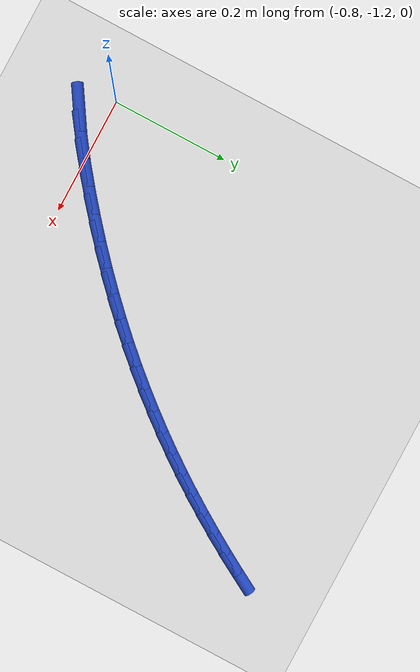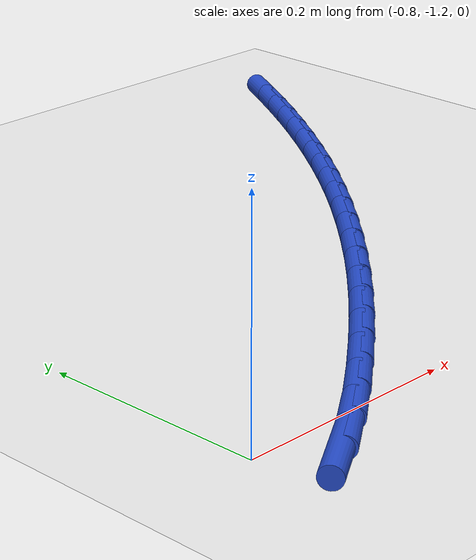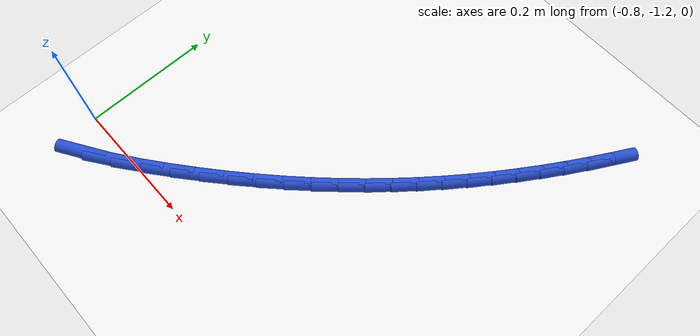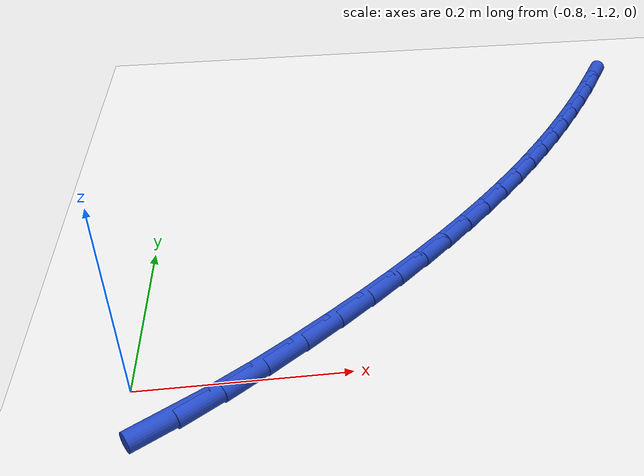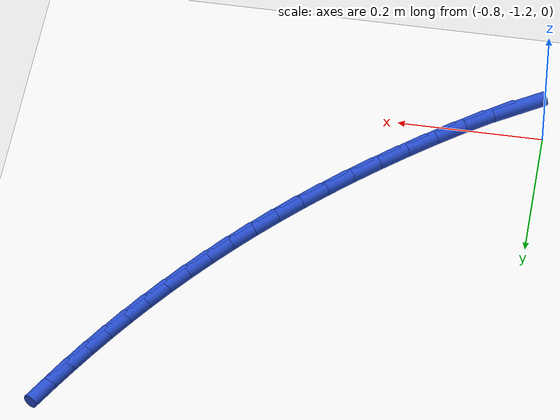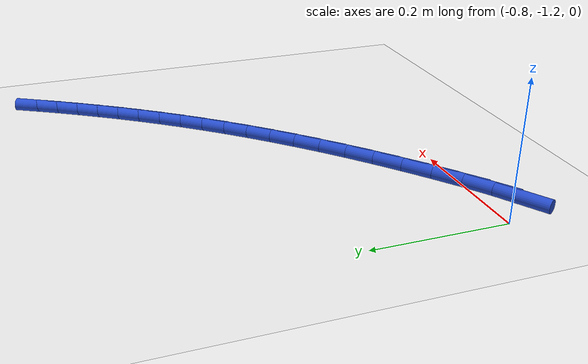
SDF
<sdf version="1.6">
 <world name="default">
  <model name="ground_plane">
   <static>1</static>
   <link name="link">
    <collision name="collision">
     <geometry><plane><normal>0 0 1</normal><size>100 100</size></plane></geometry>
     <surface><friction><ode><mu>100</mu><mu2>50</mu2></ode></friction></surface>
    </collision>
    <visual name="visual">
     <cast_shadows>0</cast_shadows>
     <geometry><plane><normal>0 0 1</normal><size>100 100</size></plane></geometry>
     <material>
      <script><uri>file://media/materials/scripts/gazebo.material</uri><name>Gazebo/WhiteGlow</name></script>
     </material>
    </visual>
   </link>
  </model>
  <model name="line">
   <link name="link_211">
    <pose>-0.7608979965279632 -1.2465274783229432 0.01 0 1.57 0.5653334712484798</pose>
    <collision name="collision">
     <geometry><cylinder><radius>0.01</radius><length>0.08</length></cylinder></geometry>
    </collision>
    <visual name="visual">
     <material>
      <script><name>Gazebo/Blue</name><uri>file://media/materials/scripts/gazebo.material</uri></script>
     </material>
     <geometry><cylinder><radius>0.01</radius><length>0.08</length></cylinder></geometry>
    </visual>
   </link>
   <link name="link_212">
    <pose>-0.7236617967190448 -1.222904668973375 0.01 0 1.57 0.6215414991816863</pose>
    <collision name="collision">
     <geometry><cylinder><radius>0.01</radius><length>0.08</length></cylinder></geometry>
    </collision>
    <visual name="visual">
     <material>
      <script><name>Gazebo/Blue</name><uri>file://media/materials/scripts/gazebo.material</uri></script>
     </material>
     <geometry><cylinder><radius>0.01</radius><length>0.08</length></cylinder></geometry>
    </visual>
   </link>
   <link name="link_213">
    <pose>-0.6866289101353781 -1.1963802816390192 0.01 0 1.57 0.6593800422172573</pose>
    <collision name="collision">
     <geometry><cylinder><radius>0.01</radius><length>0.08</length></cylinder></geometry>
    </collision>
    <visual name="visual">
     <material>
      <script><name>Gazebo/Blue</name><uri>file://media/materials/scripts/gazebo.material</uri></script>
     </material>
     <geometry><cylinder><radius>0.01</radius><length>0.08</length></cylinder></geometry>
    </visual>
   </link>
   <link name="link_214">
    <pose>-0.6504428605860939 -1.1683320401104513 0.01 0 1.57 0.6841336338602232</pose>
    <collision name="collision">
     <geometry><cylinder><radius>0.01</radius><length>0.08</length></cylinder></geometry>
    </collision>
    <visual name="visual">
     <material>
      <script><name>Gazebo/Blue</name><uri>file://media/materials/scripts/gazebo.material</uri></script>
     </material>
     <geometry><cylinder><radius>0.01</radius><length>0.08</length></cylinder></geometry>
    </visual>
   </link>
   <link name="link_215">
    <pose>-0.6156607856276066 -1.1399665241273602 0.01 0 1.57 0.7062858077648122</pose>
    <collision name="collision">
     <geometry><cylinder><radius>0.01</radius><length>0.08</length></cylinder></geometry>
    </collision>
    <visual name="visual">
     <material>
      <script><name>Gazebo/Blue</name><uri>file://media/materials/scripts/gazebo.material</uri></script>
     </material>
     <geometry><cylinder><radius>0.01</radius><length>0.08</length></cylinder></geometry>
    </visual>
   </link>
   <link name="link_216">
    <pose>-0.5823761437723975 -1.1115716960870565 0.01 0 1.57 0.728972984312592</pose>
    <collision name="collision">
     <geometry><cylinder><radius>0.01</radius><length>0.08</length></cylinder></geometry>
    </collision>
    <visual name="visual">
     <material>
      <script><name>Gazebo/Blue</name><uri>file://media/materials/scripts/gazebo.material</uri></script>
     </material>
     <geometry><cylinder><radius>0.01</radius><length>0.08</length></cylinder></geometry>
    </visual>
   </link>
   <link name="link_217">
    <pose>-0.5505274873428379 -1.0831286261204438 0.01 0 1.57 0.752117575176383</pose>
    <collision name="collision">
     <geometry><cylinder><radius>0.01</radius><length>0.08</length></cylinder></geometry>
    </collision>
    <visual name="visual">
     <material>
      <script><name>Gazebo/Blue</name><uri>file://media/materials/scripts/gazebo.material</uri></script>
     </material>
     <geometry><cylinder><radius>0.01</radius><length>0.08</length></cylinder></geometry>
    </visual>
   </link>
   <link name="link_218">
    <pose>-0.5200532597791895 -1.0546181686467293 0.01 0 1.57 0.7756273375892793</pose>
    <collision name="collision">
     <geometry><cylinder><radius>0.01</radius><length>0.08</length></cylinder></geometry>
    </collision>
    <visual name="visual">
     <material>
      <script><name>Gazebo/Blue</name><uri>file://media/materials/scripts/gazebo.material</uri></script>
     </material>
     <geometry><cylinder><radius>0.01</radius><length>0.08</length></cylinder></geometry>
    </visual>
   </link>
   <link name="link_219">
    <pose>-0.4908919045217148 -1.0260211780851198 0.01 0 1.57 0.7993981635928031</pose>
    <collision name="collision">
     <geometry><cylinder><radius>0.01</radius><length>0.08</length></cylinder></geometry>
    </collision>
    <visual name="visual">
     <material>
      <script><name>Gazebo/Blue</name><uri>file://media/materials/scripts/gazebo.material</uri></script>
     </material>
     <geometry><cylinder><radius>0.01</radius><length>0.08</length></cylinder></geometry>
    </visual>
   </link>
   <link name="link_220">
    <pose>-0.4629818650106762 -0.9973185088548232 0.01 0 1.57 0.8233151323422432</pose>
    <collision name="collision">
     <geometry><cylinder><radius>0.01</radius><length>0.08</length></cylinder></geometry>
    </collision>
    <visual name="visual">
     <material>
      <script><name>Gazebo/Blue</name><uri>file://media/materials/scripts/gazebo.material</uri></script>
     </material>
     <geometry><cylinder><radius>0.01</radius><length>0.08</length></cylinder></geometry>
    </visual>
   </link>
   <link name="link_221">
    <pose>-0.436261584686336 -0.9684910153750467 0.01 0 1.57 0.8472540188282398</pose>
    <collision name="collision">
     <geometry><cylinder><radius>0.01</radius><length>0.08</length></cylinder></geometry>
    </collision>
    <visual name="visual">
     <material>
      <script><name>Gazebo/Blue</name><uri>file://media/materials/scripts/gazebo.material</uri></script>
     </material>
     <geometry><cylinder><radius>0.01</radius><length>0.08</length></cylinder></geometry>
    </visual>
   </link>
   <link name="link_222">
    <pose>-0.4106695069889563 -0.9395195520649967 0.01 0 1.57 0.8710832298584397</pose>
    <collision name="collision">
     <geometry><cylinder><radius>0.01</radius><length>0.08</length></cylinder></geometry>
    </collision>
    <visual name="visual">
     <material>
      <script><name>Gazebo/Blue</name><uri>file://media/materials/scripts/gazebo.material</uri></script>
     </material>
     <geometry><cylinder><radius>0.01</radius><length>0.08</length></cylinder></geometry>
    </visual>
   </link>
   <link name="link_223">
    <pose>-0.3861440753587997 -0.9103849733438812 0.01 0 1.57 0.8946661058704426</pose>
    <collision name="collision">
     <geometry><cylinder><radius>0.01</radius><length>0.08</length></cylinder></geometry>
    </collision>
    <visual name="visual">
     <material>
      <script><name>Gazebo/Blue</name><uri>file://media/materials/scripts/gazebo.material</uri></script>
     </material>
     <geometry><cylinder><radius>0.01</radius><length>0.08</length></cylinder></geometry>
    </visual>
   </link>
   <link name="link_224">
    <pose>-0.3626237332361282 -0.8810681336309071 0.01 0 1.57 0.9178634973916515</pose>
    <collision name="collision">
     <geometry><cylinder><radius>0.01</radius><length>0.08</length></cylinder></geometry>
    </collision>
    <visual name="visual">
     <material>
      <script><name>Gazebo/Blue</name><uri>file://media/materials/scripts/gazebo.material</uri></script>
     </material>
     <geometry><cylinder><radius>0.01</radius><length>0.08</length></cylinder></geometry>
    </visual>
   </link>
   <link name="link_225">
    <pose>-0.34004692406120424 -0.8515498873452818 0.01 0 1.57 0.940536501490032</pose>
    <collision name="collision">
     <geometry><cylinder><radius>0.01</radius><length>0.08</length></cylinder></geometry>
    </collision>
    <visual name="visual">
     <material>
      <script><name>Gazebo/Blue</name><uri>file://media/materials/scripts/gazebo.material</uri></script>
     </material>
     <geometry><cylinder><radius>0.01</radius><length>0.08</length></cylinder></geometry>
    </visual>
   </link>
   <link name="link_226">
    <pose>-0.3183520912742901 -0.8218110889062124 0.01 0 1.57 0.9625492295401591</pose>
    <collision name="collision">
     <geometry><cylinder><radius>0.01</radius><length>0.08</length></cylinder></geometry>
    </collision>
    <visual name="visual">
     <material>
      <script><name>Gazebo/Blue</name><uri>file://media/materials/scripts/gazebo.material</uri></script>
     </material>
     <geometry><cylinder><radius>0.01</radius><length>0.08</length></cylinder></geometry>
    </visual>
   </link>
   <link name="link_227">
    <pose>-0.297477678315648 -0.791832592732906 0.01 0 1.57 0.983771475019678</pose>
    <collision name="collision">
     <geometry><cylinder><radius>0.01</radius><length>0.08</length></cylinder></geometry>
    </collision>
    <visual name="visual">
     <material>
      <script><name>Gazebo/Blue</name><uri>file://media/materials/scripts/gazebo.material</uri></script>
     </material>
     <geometry><cylinder><radius>0.01</radius><length>0.08</length></cylinder></geometry>
    </visual>
   </link>
   <link name="link_228">
    <pose>-0.2773621286255402 -0.7615952532445699 0.01 0 1.57 1.004081159200329</pose>
    <collision name="collision">
     <geometry><cylinder><radius>0.01</radius><length>0.08</length></cylinder></geometry>
    </collision>
    <visual name="visual">
     <material>
      <script><name>Gazebo/Blue</name><uri>file://media/materials/scripts/gazebo.material</uri></script>
     </material>
     <geometry><cylinder><radius>0.01</radius><length>0.08</length></cylinder></geometry>
    </visual>
   </link>
   <link name="link_229">
    <pose>-0.2579438856442291 -0.7310799248604114 0.01 0 1.57 1.0233664521740542</pose>
    <collision name="collision">
     <geometry><cylinder><radius>0.01</radius><length>0.08</length></cylinder></geometry>
    </collision>
    <visual name="visual">
     <material>
      <script><name>Gazebo/Blue</name><uri>file://media/materials/scripts/gazebo.material</uri></script>
     </material>
     <geometry><cylinder><radius>0.01</radius><length>0.08</length></cylinder></geometry>
    </visual>
   </link>
   <link name="link_230">
    <pose>-0.23916139281197704 -0.7002674619996379 0.01 0 1.57 1.0415274939202497</pose>
    <collision name="collision">
     <geometry><cylinder><radius>0.01</radius><length>0.08</length></cylinder></geometry>
    </collision>
    <visual name="visual">
     <material>
      <script><name>Gazebo/Blue</name><uri>file://media/materials/scripts/gazebo.material</uri></script>
     </material>
     <geometry><cylinder><radius>0.01</radius><length>0.08</length></cylinder></geometry>
    </visual>
   </link>
   <link name="link_231">
    <pose>-0.2209530935690461 -0.6691387190814561 0.01 0 1.57 1.058477671475503</pose>
    <collision name="collision">
     <geometry><cylinder><radius>0.01</radius><length>0.08</length></cylinder></geometry>
    </collision>
    <visual name="visual">
     <material>
      <script><name>Gazebo/Blue</name><uri>file://media/materials/scripts/gazebo.material</uri></script>
     </material>
     <geometry><cylinder><radius>0.01</radius><length>0.08</length></cylinder></geometry>
    </visual>
   </link>
  </model>
 </world>
</sdf>
